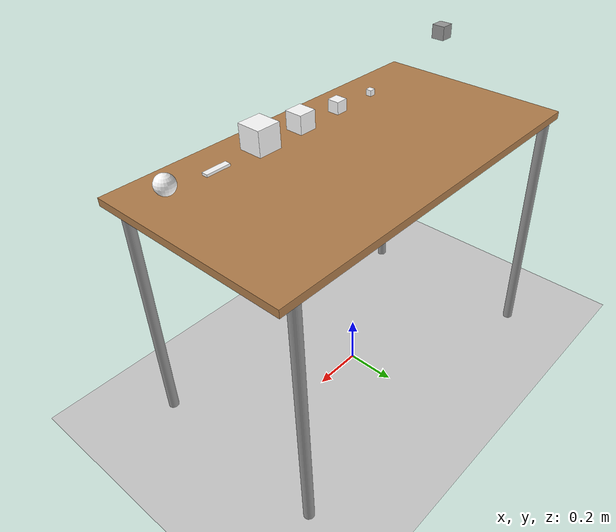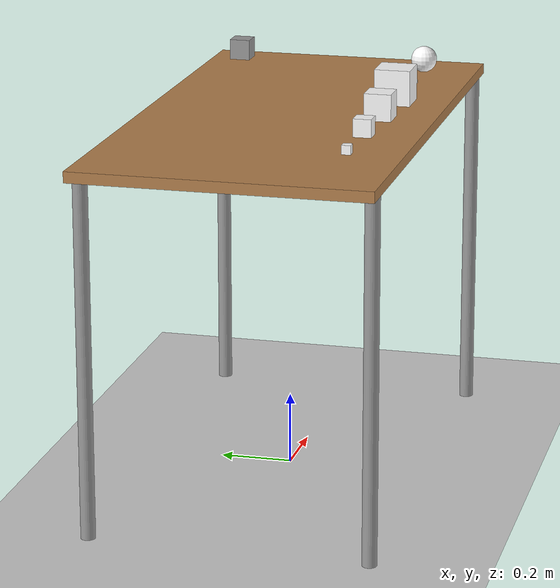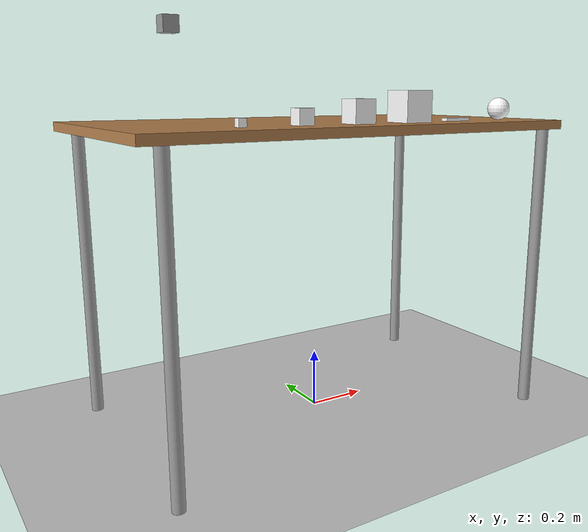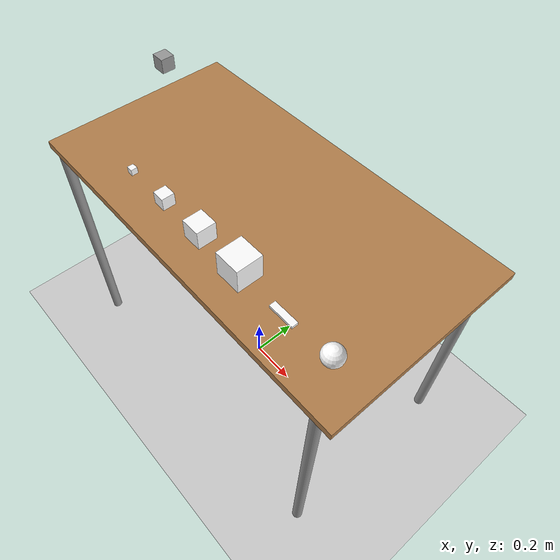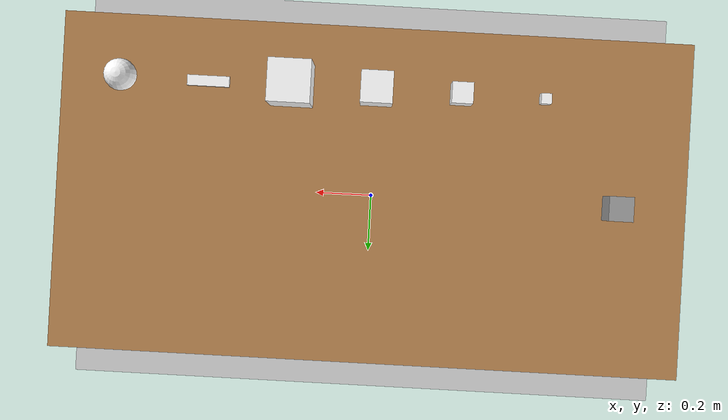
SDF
<?xml version="1.0" ?>
<sdf version="1.5">
  <world name="default">
    <gui>
      <camera name="user_camera">
        <pose>1 -1 1 0 0 1.57</pose>
      </camera>
    </gui>
    <scene>
      <shadows>0</shadows>
    </scene>
    <physics type="ode">
      <gravity>0.000000 0.000000 -9.810000</gravity>
      <ode>
        <solver>
          <type>quick</type>
          <iters>100</iters>
          <precon_iters>0</precon_iters>
          <sor>1.000000</sor>
        </solver>
        <constraints>
          <cfm>0.000000</cfm>
          <erp>0.200000</erp>
          <contact_max_correcting_vel>0.000000</contact_max_correcting_vel>
          <contact_surface_layer>0.00000</contact_surface_layer>
        </constraints>
      </ode>
      <bullet>
        <solver>
          <type>sequential_impulse</type>
          <iters>100</iters>
          <sor>1.000000</sor>
        </solver>
        <constraints>
          <cfm>0.000000</cfm>
          <erp>0.200000</erp>
          <split_impulse>true</split_impulse>
          <split_impulse_penetration_threshold>-0.01</split_impulse_penetration_threshold>
          <contact_surface_layer>0.01000</contact_surface_layer>
        </constraints>
      </bullet>
      <simbody>
        <accuracy>0.001</accuracy>
        <max_transient_velocity>0.01</max_transient_velocity>
        <contact>
          <stiffness>1e8</stiffness>
          <dissipation>10</dissipation>
          <static_friction>0.15</static_friction>
          <dynamic_friction>0.1</dynamic_friction>
          <viscous_friction>0.0</viscous_friction>
        </contact>
      </simbody>
      <real_time_update_rate>0.000000</real_time_update_rate>
      <max_step_size>0.001000</max_step_size>
    </physics>

    <!-- A global light source -->
    <include>
      <uri>model://sun</uri>
    </include>

    <!-- A ground plane -->
    <include>
      <uri>model://ground_plane</uri>
    </include>

    <include>
      <uri>model://table</uri>
    </include>

    <include>
      <uri>model://cricket_ball</uri>
      <pose>0.6 -0.25 1.015 0 0 0</pose>
    </include>

    <include>
      <uri>model://wood_block_10_2_1cm</uri>
      <pose>0.4 -0.25 1.015 0 0 0</pose>
    </include>

    <include>
      <uri>model://wood_cube_10cm</uri>
      <pose>0.2 -0.25 1.015 0 0 0</pose>
    </include>

    <include>
      <uri>model://wood_cube_7_5cm</uri>
      <pose>0 -0.25 1.015 0 0 0</pose>
    </include>

    <include>
      <uri>model://wood_cube_5cm</uri>
      <pose>-0.2 -0.25 1.015 0 0 0</pose>
    </include>

    <include>
      <uri>model://wood_cube_2_5cm</uri>
      <pose>-0.4 -0.25 1.015 0 0 0</pose>
    </include>

    <!-- model polhemus source link -->
    <model name="polhemus_source">
      <pose>-.5 0 1.3 0 3.1416 1.57</pose>
      <link name="link">
        <inertial>
          <mass>0.25</mass>
          <inertia>
            <ixx>0.000104167</ixx>
            <ixy>0</ixy>
            <ixz>0</ixz>
            <iyy>0.000104167</iyy>
            <iyz>0</iyz>
            <izz>0.000104167</izz>
          </inertia>
        </inertial>

        <visual name="visual">
          <geometry>
            <box>
              <size>0.05 0.05 0.05</size>
            </box>
          </geometry>
          <material>
            <script>
              <uri>file://media/materials/scripts/gazebo.material</uri>
              <name>Gazebo/Grey</name>
            </script>
          </material>
        </visual>
      </link>
      <static>true</static>
    </model>
  </world>
</sdf>

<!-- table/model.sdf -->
<sdf version="1.5">
  <model name="table">
    <static>true</static>
    <link name="link">
      <collision name="surface">
        <pose>0 0 1.0 0 0 0</pose>
        <geometry>
          <box>
            <size>1.5 0.8 0.03</size>
          </box>
        </geometry>
        <surface>
          <friction>
            <ode>
              <mu>0.6</mu>
              <mu2>0.6</mu2>
            </ode>
          </friction>
        </surface>
      </collision>
      <visual name="visual1">
        <pose>0 0 1.0 0 0 0</pose>
        <geometry>
          <box>
            <size>1.5 0.8 0.03</size>
          </box>
        </geometry>
        <material>
          <script>
            <uri>model://media/materials/scripts/gazebo.material</uri>
            <name>Gazebo/Wood</name>
          </script>
        </material>
      </visual>
      <collision name="front_left_leg">
        <pose>0.68 0.38 0.5 0 0 0</pose>
        <geometry>
          <cylinder>
            <radius>0.02</radius>
            <length>1.0</length>
          </cylinder>
        </geometry>
      </collision>
      <visual name="front_left_leg">
        <pose>0.68 0.38 0.5 0 0 0</pose>
        <geometry>
          <cylinder>
            <radius>0.02</radius>
            <length>1.0</length>
          </cylinder>
        </geometry>
        <material>
          <script>
            <uri>model://media/materials/scripts/gazebo.material</uri>
            <name>Gazebo/Grey</name>
          </script>
        </material>
      </visual>
      <collision name="front_right_leg">
        <pose>0.68 -0.38 0.5 0 0 0</pose>
        <geometry>
          <cylinder>
            <radius>0.02</radius>
            <length>1.0</length>
          </cylinder>
        </geometry>
      </collision>
      <visual name="front_right_leg">
        <pose>0.68 -0.38 0.5 0 0 0</pose>
        <geometry>
          <cylinder>
            <radius>0.02</radius>
            <length>1.0</length>
          </cylinder>
        </geometry>
        <material>
          <script>
            <uri>model://media/materials/scripts/gazebo.material</uri>
            <name>Gazebo/Grey</name>
          </script>
        </material>
      </visual>
      <collision name="back_right_leg">
        <pose>-0.68 -0.38 0.5 0 0 0</pose>
        <geometry>
          <cylinder>
            <radius>0.02</radius>
            <length>1.0</length>
          </cylinder>
        </geometry>
      </collision>
      <visual name="back_right_leg">
        <pose>-0.68 -0.38 0.5 0 0 0</pose>
        <geometry>
          <cylinder>
            <radius>0.02</radius>
            <length>1.0</length>
          </cylinder>
        </geometry>
        <material>
          <script>
            <uri>model://media/materials/scripts/gazebo.material</uri>
            <name>Gazebo/Grey</name>
          </script>
        </material>
      </visual>
      <collision name="back_left_leg">
        <pose>-0.68 0.38 0.5 0 0 0</pose>
        <geometry>
          <cylinder>
            <radius>0.02</radius>
            <length>1.0</length>
          </cylinder>
        </geometry>
      </collision>
      <visual name="back_left_leg">
        <pose>-0.68 0.38 0.5 0 0 0</pose>
        <geometry>
          <cylinder>
            <radius>0.02</radius>
            <length>1.0</length>
          </cylinder>
        </geometry>
        <material>
          <script>
            <uri>model://media/materials/scripts/gazebo.material</uri>
            <name>Gazebo/Grey</name>
          </script>
        </material>
      </visual>
    </link>
  </model>
</sdf>

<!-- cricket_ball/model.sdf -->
<sdf version="1.5">
  <model name="cricket_ball">
    <link name="link">
      <pose>0 0 0.0375 0 0 0</pose>
      <inertial>
        <mass>0.1467</mass>
        <inertia>
          <ixx>8.251875e-05</ixx>
          <ixy>0</ixy>
          <ixz>0</ixz>
          <iyy>8.251875e-05</iyy>
          <iyz>0</iyz>
          <izz>8.251875e-05</izz>
        </inertia>
      </inertial>

      <collision name="collision">
        <geometry>
          <sphere>
            <radius>0.0375</radius>
          </sphere>
        </geometry>
        <surface>
          <contact>
            <!-- Red Pine coefficients for longitudinal axis of the wood
                 according to:
                 http://www.fpl.fs.fed.us/documnts/fplgtr/fplgtr113/ch04.pdf -->
            <poissons_ratio>0.347</poissons_ratio>
            <elastic_modulus>8.8e+09</elastic_modulus>
            <ode>
              <kp>100000</kp>
              <kd>100</kd>
              <max_vel>100.0</max_vel>
              <min_depth>0.001</min_depth>
            </ode>
          </contact>
          <friction>
            <torsional>
              <coefficient>1.0</coefficient>
              <use_patch_radius>0</use_patch_radius>
              <surface_radius>0.01</surface_radius>
            </torsional>
          </friction>
        </surface>
      </collision>

      <visual name="visual">
        <geometry>
          <sphere>
            <radius>0.0375</radius>
          </sphere>
        </geometry>
        <material><diffuse>1 1 1 1</diffuse><specular>0.1 0.1 0.1 1</specular></material>
      </visual>

      <!-- approximate rolling friction -->
      <velocity_decay>
        <linear>0.00</linear>
        <angular>0.005</angular>
      </velocity_decay>
    </link>
  </model>
</sdf>

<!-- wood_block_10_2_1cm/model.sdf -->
<sdf version="1.5">
  <model name="wood_block_10_2_1cm">
    <link name="link">
      <pose>0 0 0.005 0 0 0</pose>
      <inertial>
        <mass>0.0125</mass>
        <inertia>
          <ixx>7.552083333333335e-07</ixx>
          <ixy>0</ixy>
          <ixz>0</ixz>
          <iyy>1.0520833333333334e-05</iyy>
          <iyz>0</iyz>
          <izz>1.1067708333333336e-05</izz>
        </inertia>
      </inertial>

      <collision name="collision">
        <geometry>
          <box>
            <size>0.1 0.025 0.01</size>
          </box>
        </geometry>
        <surface>
          <contact>
            <!-- Red Pine coefficients for longitudinal axis of the wood
                 according to:
                 http://www.fpl.fs.fed.us/documnts/fplgtr/fplgtr113/ch04.pdf -->
            <poissons_ratio>0.347</poissons_ratio>
            <elastic_modulus>8.8e+09</elastic_modulus>
            <ode>
              <kp>100000</kp>
              <kd>1</kd>
              <max_vel>1.0</max_vel>
              <min_depth>0.001</min_depth>
            </ode>
          </contact>
          <friction>
            <torsional>
              <coefficient>1.0</coefficient>
              <use_patch_radius>0</use_patch_radius>
              <surface_radius>0.05</surface_radius>
            </torsional>
          </friction>
        </surface>
      </collision>

      <visual name="visual">
        <geometry>
          <box>
            <size>0.1 0.025 0.01</size>
          </box>
        </geometry>
        <material><diffuse>1 1 1 1</diffuse><specular>0.1 0.1 0.1 1</specular></material>
      </visual>

    </link>
  </model>
</sdf>

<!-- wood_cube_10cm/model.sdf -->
<sdf version="1.5">
  <model name="wood_cube_10cm">
    <link name="link">
      <pose>0 0 0.05 0 0 0</pose>
      <inertial>
        <mass>0.5167</mass>
        <inertia>
          <ixx>0.0008611666666666669</ixx>
          <ixy>0</ixy>
          <ixz>0</ixz>
          <iyy>0.0008611666666666669</iyy>
          <iyz>0</iyz>
          <izz>0.0008611666666666669</izz>
        </inertia>
      </inertial>

      <collision name="collision">
        <geometry>
          <box>
            <size>0.1 0.1 0.1</size>
          </box>
        </geometry>
        <surface>
          <contact>
            <!-- Red Pine coefficients for longitudinal axis of the wood
                 according to:
                 http://www.fpl.fs.fed.us/documnts/fplgtr/fplgtr113/ch04.pdf -->
            <poissons_ratio>0.347</poissons_ratio>
            <elastic_modulus>8.8e+09</elastic_modulus>
            <ode>
              <kp>100000</kp>
              <kd>100</kd>
              <max_vel>100.0</max_vel>
              <min_depth>0.001</min_depth>
            </ode>
          </contact>
          <friction>
            <torsional>
              <coefficient>1.0</coefficient>
              <use_patch_radius>0</use_patch_radius>
              <surface_radius>0.01</surface_radius>
            </torsional>
          </friction>
        </surface>
      </collision>

      <visual name="visual">
        <geometry>
          <box>
            <size>0.1 0.1 0.1</size>
          </box>
        </geometry>
        <material><diffuse>1 1 1 1</diffuse><specular>0.1 0.1 0.1 1</specular></material>
      </visual>

    </link>
  </model>
</sdf>

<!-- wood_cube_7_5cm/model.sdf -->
<sdf version="1.5">
  <model name="wood_cube_7_5cm">
    <link name="link">
      <pose>0 0 0.0375 0 0 0</pose>
      <inertial>
        <mass>0.2249</mass>
        <inertia>
          <ixx>0.00021084374999999999</ixx>
          <ixy>0</ixy>
          <ixz>0</ixz>
          <iyy>0.00021084374999999999</iyy>
          <iyz>0</iyz>
          <izz>0.00021084374999999999</izz>
        </inertia>
      </inertial>

      <collision name="collision">
        <geometry>
          <box>
            <size>0.075 0.075 0.075</size>
          </box>
        </geometry>
        <surface>
          <contact>
            <!-- Red Pine coefficients for longitudinal axis of the wood
                 according to:
                 http://www.fpl.fs.fed.us/documnts/fplgtr/fplgtr113/ch04.pdf -->
            <poissons_ratio>0.347</poissons_ratio>
            <elastic_modulus>8.8e+09</elastic_modulus>
            <ode>
              <kp>100000</kp>
              <kd>100</kd>
              <max_vel>100.0</max_vel>
              <min_depth>0.001</min_depth>
            </ode>
          </contact>
          <friction>
            <torsional>
              <coefficient>1.0</coefficient>
              <use_patch_radius>0</use_patch_radius>
              <surface_radius>0.01</surface_radius>
            </torsional>
          </friction>
        </surface>
      </collision>

      <visual name="visual">
        <geometry>
          <box>
            <size>0.075 0.075 0.075</size>
          </box>
        </geometry>
        <material><diffuse>1 1 1 1</diffuse><specular>0.1 0.1 0.1 1</specular></material>
      </visual>

    </link>
  </model>
</sdf>

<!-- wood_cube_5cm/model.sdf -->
<sdf version="1.5">
  <model name="wood_cube_5cm">
    <link name="link">
      <pose>0 0 0.025 0 0 0</pose>
      <inertial>
        <mass>0.0565</mass>
        <inertia>
          <ixx>2.3541666666666672e-05</ixx>
          <ixy>0</ixy>
          <ixz>0</ixz>
          <iyy>2.3541666666666672e-05</iyy>
          <iyz>0</iyz>
          <izz>2.3541666666666672e-05</izz>
        </inertia>
      </inertial>

      <collision name="collision">
        <geometry>
          <box>
            <size>0.05 0.05 0.05</size>
          </box>
        </geometry>
        <surface>
          <contact>
            <!-- Red Pine coefficients for longitudinal axis of the wood
                 according to:
                 http://www.fpl.fs.fed.us/documnts/fplgtr/fplgtr113/ch04.pdf -->
            <poissons_ratio>0.347</poissons_ratio>
            <elastic_modulus>8.8e+09</elastic_modulus>
            <ode>
              <kp>100000</kp>
              <kd>1</kd>
              <max_vel>1.0</max_vel>
              <min_depth>0.001</min_depth>
            </ode>
          </contact>
          <friction>
            <torsional>
              <coefficient>1.0</coefficient>
              <use_patch_radius>0</use_patch_radius>
              <surface_radius>0.05</surface_radius>
            </torsional>
          </friction>
        </surface>
      </collision>

      <visual name="visual">
        <geometry>
          <box>
            <size>0.05 0.05 0.05</size>
          </box>
        </geometry>
        <material><diffuse>1 1 1 1</diffuse><specular>0.1 0.1 0.1 1</specular></material>
      </visual>

    </link>
  </model>
</sdf>

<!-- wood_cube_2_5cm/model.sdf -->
<sdf version="1.5">
  <model name="wood_cube_2_5cm">
    <link name="link">
      <pose>0 0 0.0125 0 0 0</pose>
      <inertial>
        <mass>0.0073</mass>
        <inertia>
          <ixx>7.604166666666669e-07</ixx>
          <ixy>0</ixy>
          <ixz>0</ixz>
          <iyy>7.604166666666669e-07</iyy>
          <iyz>0</iyz>
          <izz>7.604166666666669e-07</izz>
        </inertia>
      </inertial>

      <collision name="collision">
        <geometry>
          <box>
            <size>0.025 0.025 0.025</size>
          </box>
        </geometry>
        <surface>
          <contact>
            <!-- Red Pine coefficients for longitudinal axis of the wood
                 according to:
                 http://www.fpl.fs.fed.us/documnts/fplgtr/fplgtr113/ch04.pdf -->
            <poissons_ratio>0.347</poissons_ratio>
            <elastic_modulus>8.8e+09</elastic_modulus>
            <ode>
              <kp>100000</kp>
              <kd>100</kd>
              <max_vel>100.0</max_vel>
              <min_depth>0.001</min_depth>
            </ode>
          </contact>
          <friction>
            <torsional>
              <coefficient>1.0</coefficient>
              <use_patch_radius>0</use_patch_radius>
              <surface_radius>0.01</surface_radius>
            </torsional>
          </friction>
        </surface>
      </collision>

      <visual name="visual">
        <geometry>
          <box>
            <size>0.025 0.025 0.025</size>
          </box>
        </geometry>
        <material><diffuse>1 1 1 1</diffuse><specular>0.1 0.1 0.1 1</specular></material>
      </visual>

    </link>
  </model>
</sdf>
